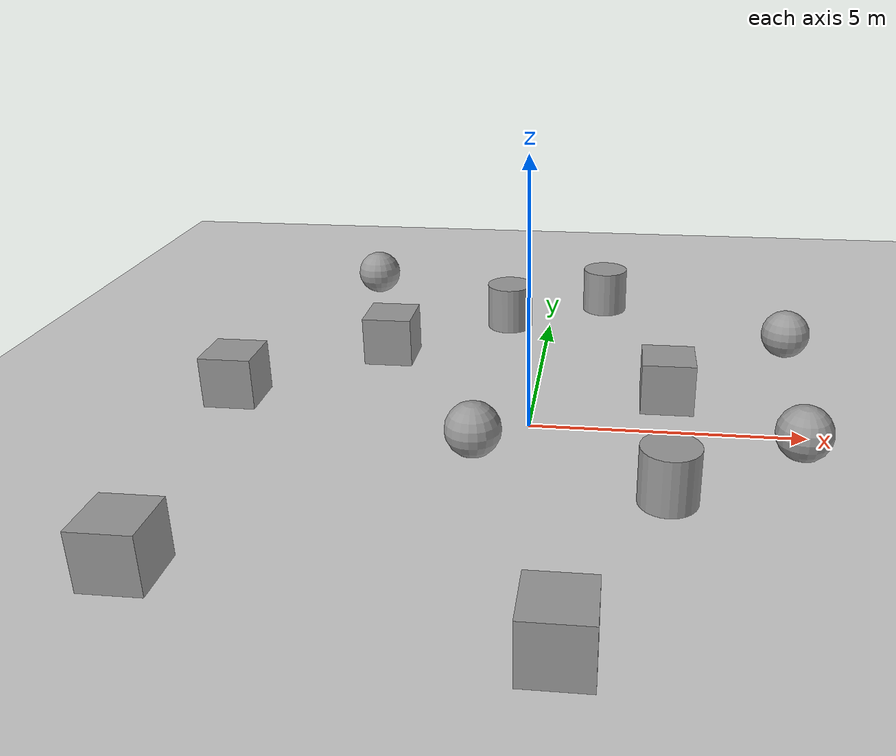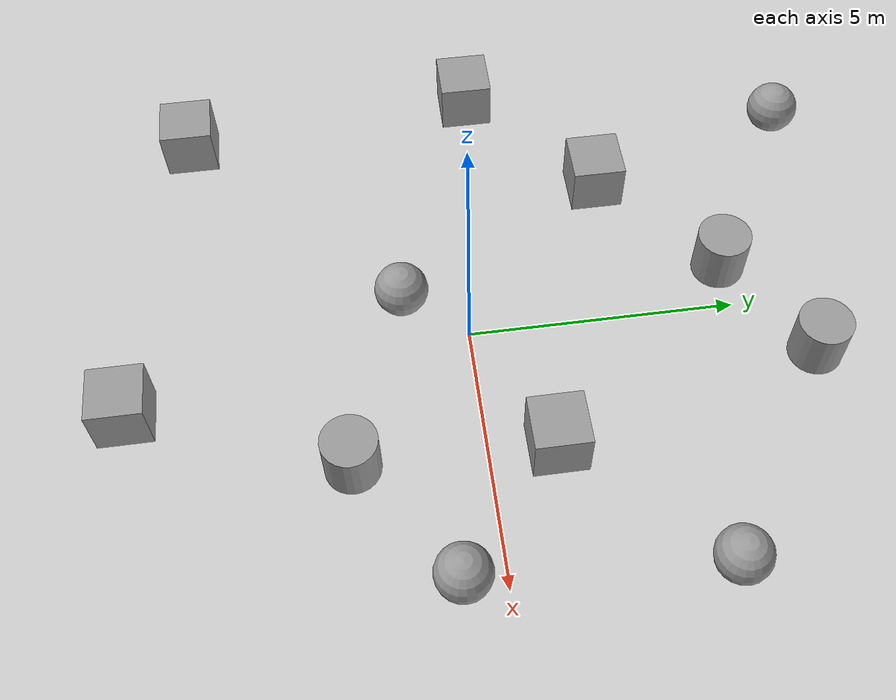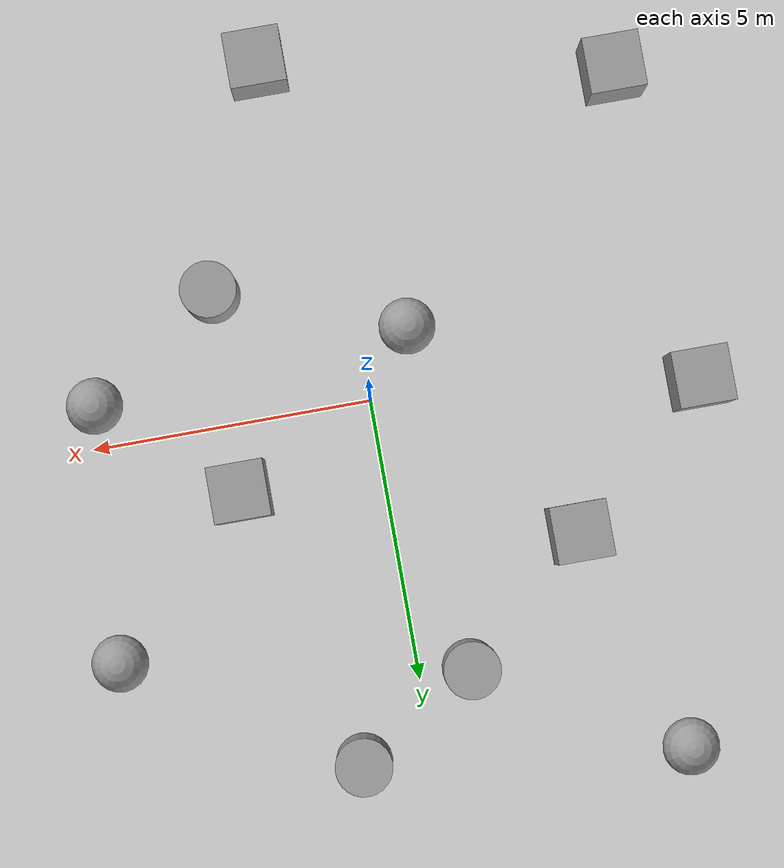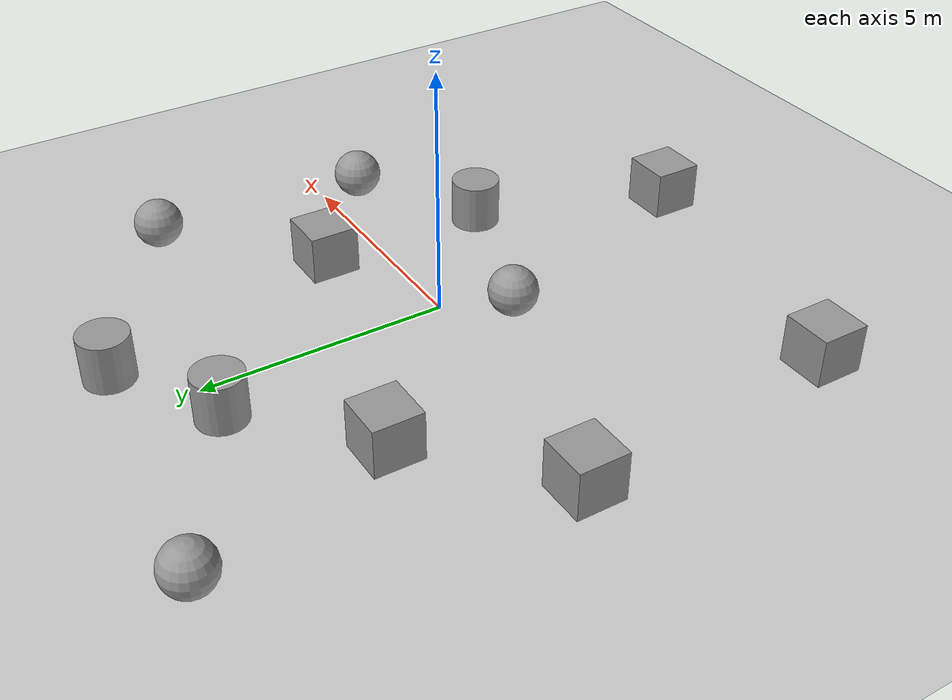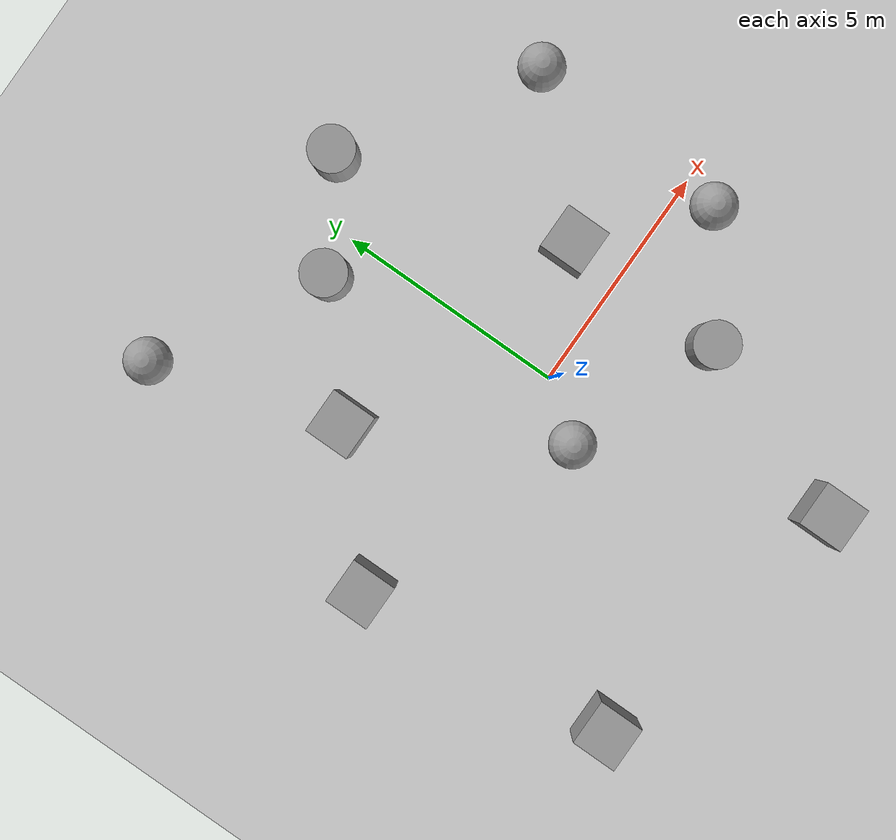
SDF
<sdf version="1.6">
 <world name="default">
  <light name="sun" type="directional">
   <pose>0 0 10 0 -0 0</pose>
   <diffuse>0.8 0.8 0.8 1</diffuse>
   <specular>0.2 0.2 0.2 1</specular>
   <attenuation>
    <range>1000</range>
    <constant>0.9</constant>
    <linear>0.01</linear>
    <quadratic>0.001</quadratic>
   </attenuation>
   <direction>-0.5 0.1 -0.9</direction>
  </light>
  <model name="ground_plane">
   <static>1</static>
   <link name="link">
    <collision name="collision">
     <geometry><plane><normal>0 0 1</normal><size>100 100</size></plane></geometry>
     <surface><friction><ode><mu>100</mu><mu2>50</mu2></ode></friction></surface>
    </collision>
    <visual name="visual">
     <cast_shadows>0</cast_shadows>
     <geometry><plane><normal>0 0 1</normal><size>100 100</size></plane></geometry>
     <material>
      <script><uri>file://media/materials/scripts/gazebo.material</uri><name>Gazebo/Grey</name></script>
     </material>
    </visual>
   </link>
  </model>
  <gravity>0 0 -9.8</gravity>
  <magnetic_field>6e-06 2.3e-05 -4.2e-05</magnetic_field>
  <atmosphere type="adiabatic"/>
  <physics name="default_physics" default="0" type="ode">
   <max_step_size>0.001</max_step_size>
   <real_time_factor>1</real_time_factor>
   <real_time_update_rate>1000</real_time_update_rate>
  </physics>
  <scene><ambient>0.4 0.4 0.4 1</ambient><background>0.7 0.7 0.7 1</background><shadows>1</shadows></scene>
  <spherical_coordinates>
   <surface_model>EARTH_WGS84</surface_model>
   <latitude_deg>0</latitude_deg>
   <longitude_deg>0</longitude_deg>
   <elevation>0</elevation>
   <heading_deg>0</heading_deg>
  </spherical_coordinates>
  <model name="unit_box">
   <pose>-3.19595 2.92534 0.499995 -1e-05 0 0</pose>
   <link name="link">
    <inertial>
     <mass>1</mass>
     <inertia>
      <ixx>0.166667</ixx>
      <ixy>0</ixy>
      <ixz>0</ixz>
      <iyy>0.166667</iyy>
      <iyz>0</iyz>
      <izz>0.166667</izz>
     </inertia>
    </inertial>
    <collision name="collision"><geometry><box><size>1 1 1</size></box></geometry></collision>
    <visual name="visual">
     <geometry><box><size>1 1 1</size></box></geometry>
     <material>
      <script><name>Gazebo/Grey</name><uri>file://media/materials/scripts/gazebo.material</uri></script>
     </material>
    </visual>
   </link>
  </model>
  <model name="unit_cylinder">
   <pose>-0.908663 4.93755 0.499992 -3e-06 3e-06 0</pose>
   <link name="link">
    <inertial>
     <mass>1</mass>
     <inertia><ixx>0.145833</ixx><ixy>0</ixy><ixz>0</ixz><iyy>0.145833</iyy><iyz>0</iyz><izz>0.125</izz></inertia>
    </inertial>
    <collision name="collision">
     <geometry><cylinder><radius>0.5</radius><length>1</length></cylinder></geometry>
    </collision>
    <visual name="visual">
     <geometry><cylinder><radius>0.5</radius><length>1</length></cylinder></geometry>
     <material>
      <script><name>Gazebo/Grey</name><uri>file://media/materials/scripts/gazebo.material</uri></script>
     </material>
    </visual>
   </link>
  </model>
  <model name="unit_sphere">
   <pose>-0.85695 -1.158 0.5 0 -0 0</pose>
   <link name="link">
    <inertial>
     <mass>1</mass>
     <inertia><ixx>0.1</ixx><ixy>0</ixy><ixz>0</ixz><iyy>0.1</iyy><iyz>0</iyz><izz>0.1</izz></inertia>
    </inertial>
    <collision name="collision"><geometry><sphere><radius>0.5</radius></sphere></geometry></collision>
    <visual name="visual">
     <geometry><sphere><radius>0.5</radius></sphere></geometry>
     <material>
      <script><name>Gazebo/Grey</name><uri>file://media/materials/scripts/gazebo.material</uri></script>
     </material>
    </visual>
   </link>
  </model>
  <model name="unit_box_0">
   <pose>2.53068 1.19978 0.499995 0 1e-05 0</pose>
   <link name="link">
    <inertial>
     <mass>1</mass>
     <inertia>
      <ixx>0.166667</ixx>
      <ixy>0</ixy>
      <ixz>0</ixz>
      <iyy>0.166667</iyy>
      <iyz>0</iyz>
      <izz>0.166667</izz>
     </inertia>
    </inertial>
    <collision name="collision"><geometry><box><size>1 1 1</size></box></geometry></collision>
    <visual name="visual">
     <geometry><box><size>1 1 1</size></box></geometry>
     <material>
      <script><name>Gazebo/Grey</name><uri>file://media/materials/scripts/gazebo.material</uri></script>
     </material>
    </visual>
   </link>
  </model>
  <model name="unit_cylinder_0">
   <pose>2.44963 -2.3465 0.499998 3e-06 -4e-06 0</pose>
   <link name="link">
    <inertial>
     <mass>1</mass>
     <inertia><ixx>0.145833</ixx><ixy>0</ixy><ixz>0</ixz><iyy>0.145833</iyy><iyz>0</iyz><izz>0.125</izz></inertia>
    </inertial>
    <collision name="collision">
     <geometry><cylinder><radius>0.5</radius><length>1</length></cylinder></geometry>
    </collision>
    <visual name="visual">
     <geometry><cylinder><radius>0.5</radius><length>1</length></cylinder></geometry>
     <material>
      <script><name>Gazebo/Grey</name><uri>file://media/materials/scripts/gazebo.material</uri></script>
     </material>
    </visual>
   </link>
  </model>
  <model name="unit_sphere_0">
   <pose>-4.4313 6.92333 0.5 0 -0 0</pose>
   <link name="link">
    <inertial>
     <mass>1</mass>
     <inertia><ixx>0.1</ixx><ixy>0</ixy><ixz>0</ixz><iyy>0.1</iyy><iyz>0</iyz><izz>0.1</izz></inertia>
    </inertial>
    <collision name="collision"><geometry><sphere><radius>0.5</radius></sphere></geometry></collision>
    <visual name="visual">
     <geometry><sphere><radius>0.5</radius></sphere></geometry>
     <material>
      <script><name>Gazebo/Grey</name><uri>file://media/materials/scripts/gazebo.material</uri></script>
     </material>
    </visual>
   </link>
  </model>
  <model name="unit_box_1">
   <pose>-5.75763 0.640297 0.499995 -1e-05 0 0</pose>
   <link name="link">
    <inertial>
     <mass>1</mass>
     <inertia>
      <ixx>0.166667</ixx>
      <ixy>0</ixy>
      <ixz>0</ixz>
      <iyy>0.166667</iyy>
      <iyz>0</iyz>
      <izz>0.166667</izz>
     </inertia>
    </inertial>
    <collision name="collision"><geometry><box><size>1 1 1</size></box></geometry></collision>
    <visual name="visual">
     <geometry><box><size>1 1 1</size></box></geometry>
     <material>
      <script><name>Gazebo/Grey</name><uri>file://media/materials/scripts/gazebo.material</uri></script>
     </material>
    </visual>
   </link>
  </model>
  <model name="unit_cylinder_1">
   <pose>1.21498 6.23632 0.499992 -3e-06 -4e-06 -0</pose>
   <link name="link">
    <inertial>
     <mass>1</mass>
     <inertia><ixx>0.145833</ixx><ixy>0</ixy><ixz>0</ixz><iyy>0.145833</iyy><iyz>0</iyz><izz>0.125</izz></inertia>
    </inertial>
    <collision name="collision">
     <geometry><cylinder><radius>0.5</radius><length>1</length></cylinder></geometry>
    </collision>
    <visual name="visual">
     <geometry><cylinder><radius>0.5</radius><length>1</length></cylinder></geometry>
     <material>
      <script><name>Gazebo/Grey</name><uri>file://media/materials/scripts/gazebo.material</uri></script>
     </material>
    </visual>
   </link>
  </model>
  <model name="unit_sphere_1">
   <pose>5.09353 3.77871 0.5 0 -0 0</pose>
   <link name="link">
    <inertial>
     <mass>1</mass>
     <inertia><ixx>0.1</ixx><ixy>0</ixy><ixz>0</ixz><iyy>0.1</iyy><iyz>0</iyz><izz>0.1</izz></inertia>
    </inertial>
    <collision name="collision"><geometry><sphere><radius>0.5</radius></sphere></geometry></collision>
    <visual name="visual">
     <geometry><sphere><radius>0.5</radius></sphere></geometry>
     <material>
      <script><name>Gazebo/Grey</name><uri>file://media/materials/scripts/gazebo.material</uri></script>
     </material>
    </visual>
   </link>
  </model>
  <model name="unit_sphere_2">
   <pose>4.78943 -0.727897 0.5 0 -0 0</pose>
   <link name="link">
    <inertial>
     <mass>1</mass>
     <inertia><ixx>0.1</ixx><ixy>0</ixy><ixz>0</ixz><iyy>0.1</iyy><iyz>0</iyz><izz>0.1</izz></inertia>
    </inertial>
    <collision name="collision"><geometry><sphere><radius>0.5</radius></sphere></geometry></collision>
    <visual name="visual">
     <geometry><sphere><radius>0.5</radius></sphere></geometry>
     <material>
      <script><name>Gazebo/Grey</name><uri>file://media/materials/scripts/gazebo.material</uri></script>
     </material>
    </visual>
   </link>
  </model>
  <model name="unit_box_2">
   <pose>-5.2337 -5.04875 0.499995 -1e-05 0 0</pose>
   <link name="link">
    <inertial>
     <mass>1</mass>
     <inertia>
      <ixx>0.166667</ixx>
      <ixy>0</ixy>
      <ixz>0</ixz>
      <iyy>0.166667</iyy>
      <iyz>0</iyz>
      <izz>0.166667</izz>
     </inertia>
    </inertial>
    <collision name="collision"><geometry><box><size>1 1 1</size></box></geometry></collision>
    <visual name="visual">
     <geometry><box><size>1 1 1</size></box></geometry>
     <material>
      <script><name>Gazebo/Grey</name><uri>file://media/materials/scripts/gazebo.material</uri></script>
     </material>
    </visual>
   </link>
  </model>
  <model name="unit_box_3">
   <pose>0.960491 -6.24288 0.5 0 -0 0</pose>
   <link name="link">
    <inertial>
     <mass>1</mass>
     <inertia>
      <ixx>0.166667</ixx>
      <ixy>0</ixy>
      <ixz>0</ixz>
      <iyy>0.166667</iyy>
      <iyz>0</iyz>
      <izz>0.166667</izz>
     </inertia>
    </inertial>
    <collision name="collision"><geometry><box><size>1 1 1</size></box></geometry></collision>
    <visual name="visual">
     <geometry><box><size>1 1 1</size></box></geometry>
     <material>
      <script><name>Gazebo/Grey</name><uri>file://media/materials/scripts/gazebo.material</uri></script>
     </material>
    </visual>
   </link>
  </model>
 </world>
</sdf>
